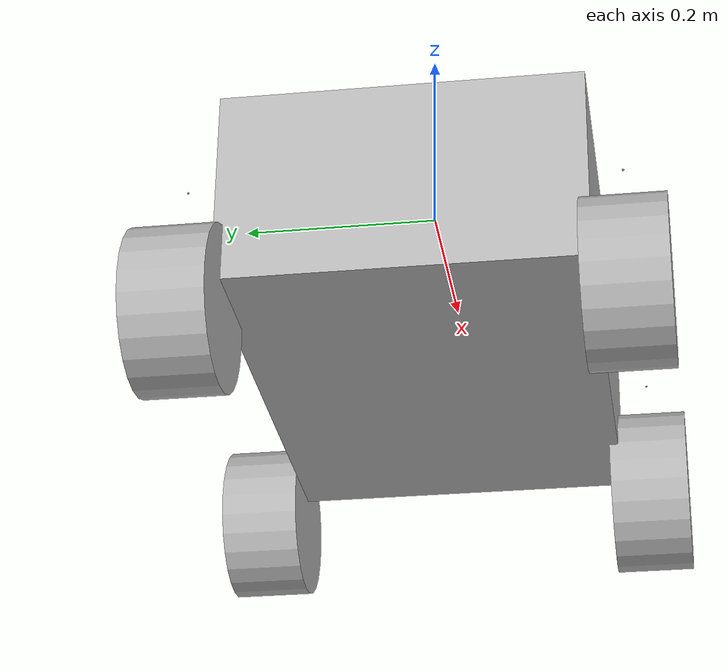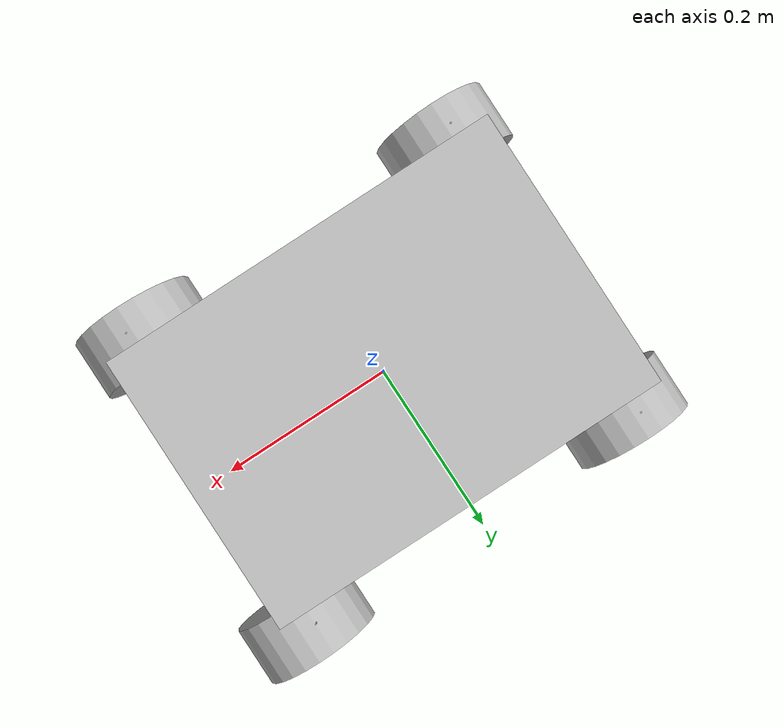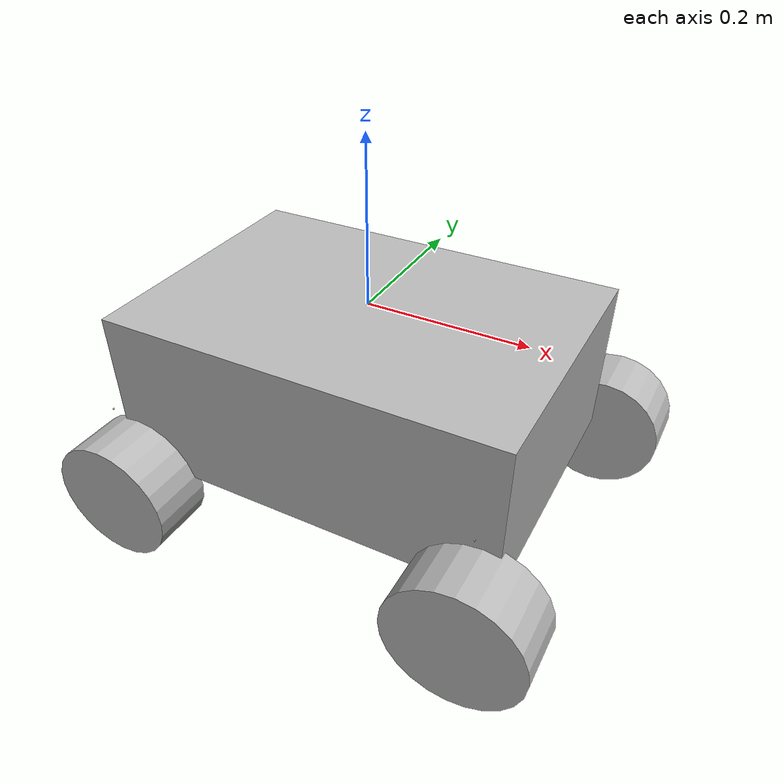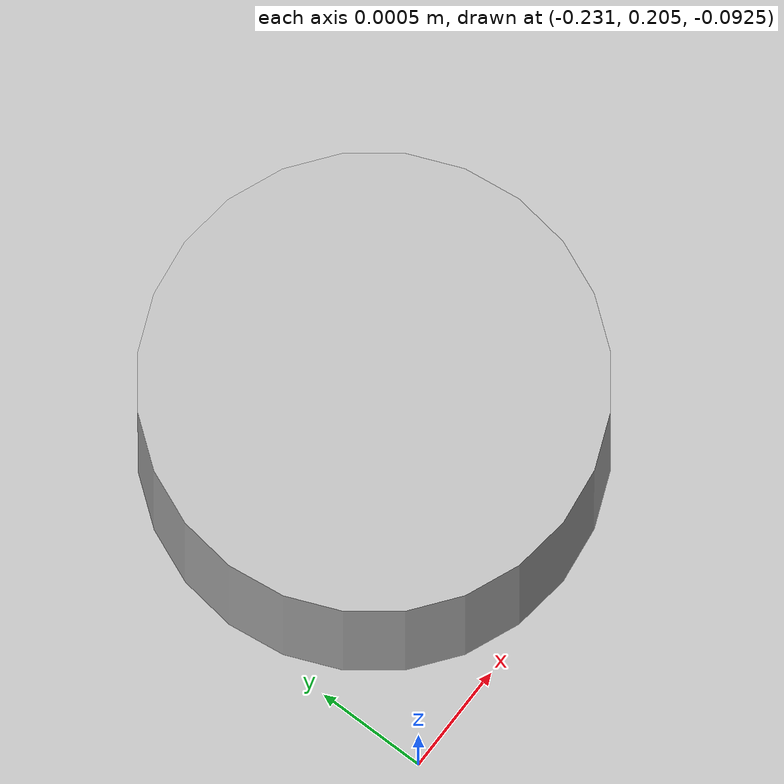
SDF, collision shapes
<sdf version='1.7'>
  <model name='ranger_mini_v2'>
    <link name='base_footprint'>
      <inertial>
        <pose>0 0 0 0 -0 0</pose>
        <mass>10</mass>
        <inertia>
          <ixx>1</ixx>
          <ixy>0</ixy>
          <ixz>0</ixz>
          <iyy>1</iyy>
          <iyz>0</iyz>
          <izz>1</izz>
        </inertia>
      </inertial>
      <collision name='base_footprint_fixed_joint_lump__base_link_collision'>
        <pose>0 0 -0.1 0 -0 0</pose>
        <geometry>
          <box>
            <size>0.5 0.35 0.2</size>
          </box>
        </geometry>
      </collision>
      <visual name='base_footprint_fixed_joint_lump__base_link_visual'>
        <pose>0 0 0 1.57 0 3.14</pose>
        <geometry>
          <mesh>
            <scale>1 1 1</scale>
            <uri>file://$(find ranger_mini_v2)/meshes/ranger_mini_v2/meshes/ranger_base.dae</uri>
          </mesh>
        </geometry>
      </visual>
    </link>
    <joint name='fl_steering_wheel' type='revolute'>
      <pose relative_to='base_footprint'>0.23 0.206 -0.1 0 -0 0</pose>
      <parent>base_footprint</parent>
      <child>fl_steering_wheel_link</child>
      <axis>
        <xyz>0 0 1</xyz>
        <limit>
          <lower>-2.1</lower>
          <upper>2.1</upper>
          <effort>5</effort>
          <velocity>6.28</velocity>
        </limit>
        <dynamics>
          <spring_reference>0</spring_reference>
          <spring_stiffness>0</spring_stiffness>
        </dynamics>
      </axis>
    </joint>
    <link name='fl_steering_wheel_link'>
      <pose relative_to='fl_steering_wheel'>0 0 0 0 -0 0</pose>
      <inertial>
        <pose>0 0 0 0 -0 0</pose>
        <mass>1</mass>
        <inertia>
          <ixx>0.01</ixx>
          <ixy>0</ixy>
          <ixz>0</ixz>
          <iyy>0.01</iyy>
          <iyz>0</iyz>
          <izz>0.01</izz>
        </inertia>
      </inertial>
      <collision name='fl_steering_wheel_link_collision'>
        <pose>0 0 0.008 0 -0 0</pose>
        <geometry>
          <cylinder>
            <length>0.001</length>
            <radius>0.001</radius>
          </cylinder>
        </geometry>
      </collision>
      <collision name='fl_steering_wheel_link_collision_1'>
        <pose>0 0 0 0 -0 0</pose>
        <geometry>
          <cylinder>
            <length>0.001</length>
            <radius>0.001</radius>
          </cylinder>
        </geometry>
      </collision>
      <visual name='fl_steering_wheel_link_visual'>
        <pose>-0.23 -0.194 0.1 1.57 0 3.14</pose>
        <geometry>
          <mesh>
            <scale>1 1 1</scale>
            <uri>file://$(find ranger_mini_v2)/meshes/ranger_mini_v2/meshes/fl.dae</uri>
          </mesh>
        </geometry>
      </visual>
    </link>
    <joint name='fl_wheel' type='revolute'>
      <pose relative_to='fl_steering_wheel_link'>0.03 0.01 -0.12 0 -0 0</pose>
      <parent>fl_steering_wheel_link</parent>
      <child>fl_wheel_link</child>
      <axis>
        <xyz>0 1 0</xyz>
        <limit>
          <lower>-1e+16</lower>
          <upper>1e+16</upper>
        </limit>
        <dynamics>
          <spring_reference>0</spring_reference>
          <spring_stiffness>0</spring_stiffness>
        </dynamics>
      </axis>
    </joint>
    <link name='fl_wheel_link'>
      <pose relative_to='fl_wheel'>0 0 0 0 -0 0</pose>
      <inertial>
        <pose>0 0 0 0 -0 0</pose>
        <mass>8</mass>
        <inertia>
          <ixx>0.1171</ixx>
          <ixy>0</ixy>
          <ixz>0</ixz>
          <iyy>0.1361</iyy>
          <iyz>0</iyz>
          <izz>0.1171</izz>
        </inertia>
      </inertial>
      <collision name='fl_wheel_link_collision'>
        <pose>0 0 0 1.57 -0 0</pose>
        <geometry>
          <cylinder>
            <length>0.08</length>
            <radius>0.08</radius>
          </cylinder>
        </geometry>
      </collision>
      <visual name='fl_wheel_link_visual'>
        <pose>0 0 0 1.57 -0 0</pose>
        <geometry>
          <cylinder>
            <length>0.01</length>
            <radius>0.01</radius>
          </cylinder>
        </geometry>
      </visual>
    </link>
    <joint name='fr_steering_wheel' type='revolute'>
      <pose relative_to='base_footprint'>0.23 -0.206 -0.1 0 -0 0</pose>
      <parent>base_footprint</parent>
      <child>fr_steering_wheel_link</child>
      <axis>
        <xyz>0 0 1</xyz>
        <limit>
          <lower>-2.1</lower>
          <upper>2.1</upper>
          <effort>5</effort>
          <velocity>6.28</velocity>
        </limit>
        <dynamics>
          <spring_reference>0</spring_reference>
          <spring_stiffness>0</spring_stiffness>
        </dynamics>
      </axis>
    </joint>
    <link name='fr_steering_wheel_link'>
      <pose relative_to='fr_steering_wheel'>0 0 0 0 -0 0</pose>
      <inertial>
        <pose>0 0 0 0 -0 0</pose>
        <mass>1</mass>
        <inertia>
          <ixx>0.01</ixx>
          <ixy>0</ixy>
          <ixz>0</ixz>
          <iyy>0.01</iyy>
          <iyz>0</iyz>
          <izz>0.01</izz>
        </inertia>
      </inertial>
      <collision name='fr_steering_wheel_link_collision'>
        <pose>0 0 0.008 0 -0 0</pose>
        <geometry>
          <cylinder>
            <length>0.001</length>
            <radius>0.001</radius>
          </cylinder>
        </geometry>
      </collision>
      <visual name='fr_steering_wheel_link_visual'>
        <pose>-0.23 0.194 0.1 1.57 0 3.14</pose>
        <geometry>
          <mesh>
            <scale>1 1 1</scale>
            <uri>file://$(find ranger_mini_v2)/meshes/ranger_mini_v2/meshes/fr.dae</uri>
          </mesh>
        </geometry>
      </visual>
    </link>
    <joint name='fr_wheel' type='revolute'>
      <pose relative_to='fr_steering_wheel_link'>0 0 -0.12 0 -0 0</pose>
      <parent>fr_steering_wheel_link</parent>
      <child>fr_wheel_link</child>
      <axis>
        <xyz>0 1 0</xyz>
        <limit>
          <lower>-1e+16</lower>
          <upper>1e+16</upper>
        </limit>
        <dynamics>
          <spring_reference>0</spring_reference>
          <spring_stiffness>0</spring_stiffness>
        </dynamics>
      </axis>
    </joint>
    <link name='fr_wheel_link'>
      <pose relative_to='fr_wheel'>0 0 0 0 -0 0</pose>
      <inertial>
        <pose>0 0 0 0 -0 0</pose>
        <mass>8</mass>
        <inertia>
          <ixx>0.1171</ixx>
          <ixy>0</ixy>
          <ixz>0</ixz>
          <iyy>0.1361</iyy>
          <iyz>0</iyz>
          <izz>0.1171</izz>
        </inertia>
      </inertial>
      <collision name='fr_wheel_link_collision'>
        <pose>0 0 0 1.57 -0 0</pose>
        <geometry>
          <cylinder>
            <length>0.08</length>
            <radius>0.085</radius>
          </cylinder>
        </geometry>
      </collision>
      <visual name='fr_wheel_link_visual'>
        <pose>0 0 0 1.57 -0 0</pose>
        <geometry>
          <cylinder>
            <length>0.01</length>
            <radius>0.01</radius>
          </cylinder>
        </geometry>
      </visual>
    </link>
    <joint name='rl_steering_wheel' type='revolute'>
      <pose relative_to='base_footprint'>-0.23 0.206 -0.1 0 -0 0</pose>
      <parent>base_footprint</parent>
      <child>rl_steering_wheel_link</child>
      <axis>
        <xyz>0 0 1</xyz>
        <limit>
          <lower>-2.1</lower>
          <upper>2.1</upper>
          <effort>5</effort>
          <velocity>6.28</velocity>
        </limit>
        <dynamics>
          <spring_reference>0</spring_reference>
          <spring_stiffness>0</spring_stiffness>
        </dynamics>
      </axis>
    </joint>
    <link name='rl_steering_wheel_link'>
      <pose relative_to='rl_steering_wheel'>0 0 0 0 -0 0</pose>
      <inertial>
        <pose>0 0 0 0 -0 0</pose>
        <mass>1</mass>
        <inertia>
          <ixx>0.01</ixx>
          <ixy>0</ixy>
          <ixz>0</ixz>
          <iyy>0.01</iyy>
          <iyz>0</iyz>
          <izz>0.01</izz>
        </inertia>
      </inertial>
      <collision name='rl_steering_wheel_link_collision'>
        <pose>0 0 0.008 0 -0 0</pose>
        <geometry>
          <cylinder>
            <length>0.001</length>
            <radius>0.001</radius>
          </cylinder>
        </geometry>
      </collision>
      <visual name='rl_steering_wheel_link_visual'>
        <pose>-0.23 -0.194 0.1 1.57 0 3.14</pose>
        <geometry>
          <mesh>
            <scale>1 1 1</scale>
            <uri>file://$(find ranger_mini_v2)/meshes/ranger_mini_v2/meshes/fl.dae</uri>
          </mesh>
        </geometry>
      </visual>
    </link>
    <joint name='rl_wheel' type='revolute'>
      <pose relative_to='rl_steering_wheel_link'>0 0 -0.12 0 -0 0</pose>
      <parent>rl_steering_wheel_link</parent>
      <child>rl_wheel_link</child>
      <axis>
        <xyz>0 1 0</xyz>
        <limit>
          <lower>-1e+16</lower>
          <upper>1e+16</upper>
        </limit>
        <dynamics>
          <spring_reference>0</spring_reference>
          <spring_stiffness>0</spring_stiffness>
        </dynamics>
      </axis>
    </joint>
    <link name='rl_wheel_link'>
      <pose relative_to='rl_wheel'>0 0 0 0 -0 0</pose>
      <inertial>
        <pose>0 0 0 0 -0 0</pose>
        <mass>8</mass>
        <inertia>
          <ixx>0.1171</ixx>
          <ixy>0</ixy>
          <ixz>0</ixz>
          <iyy>0.1361</iyy>
          <iyz>0</iyz>
          <izz>0.1171</izz>
        </inertia>
      </inertial>
      <collision name='rl_wheel_link_collision'>
        <pose>0 0 0 1.57 -0 0</pose>
        <geometry>
          <cylinder>
            <length>0.08</length>
            <radius>0.08</radius>
          </cylinder>
        </geometry>
      </collision>
      <visual name='rl_wheel_link_visual'>
        <pose>0 0 0 1.57 -0 0</pose>
        <geometry>
          <cylinder>
            <length>0.01</length>
            <radius>0.01</radius>
          </cylinder>
        </geometry>
      </visual>
    </link>
    <joint name='rr_steering_wheel' type='revolute'>
      <pose relative_to='base_footprint'>-0.23 -0.206 -0.1 0 -0 0</pose>
      <parent>base_footprint</parent>
      <child>rr_steering_wheel_link</child>
      <axis>
        <xyz>0 0 1</xyz>
        <limit>
          <lower>-2.1</lower>
          <upper>2.1</upper>
          <effort>5</effort>
          <velocity>6.28</velocity>
        </limit>
        <dynamics>
          <spring_reference>0</spring_reference>
          <spring_stiffness>0</spring_stiffness>
        </dynamics>
      </axis>
    </joint>
    <link name='rr_steering_wheel_link'>
      <pose relative_to='rr_steering_wheel'>0 0 0 0 -0 0</pose>
      <inertial>
        <pose>0 0 0 0 -0 0</pose>
        <mass>1</mass>
        <inertia>
          <ixx>0.01</ixx>
          <ixy>0</ixy>
          <ixz>0</ixz>
          <iyy>0.01</iyy>
          <iyz>0</iyz>
          <izz>0.01</izz>
        </inertia>
      </inertial>
      <collision name='rr_steering_wheel_link_collision'>
        <pose>0 0 0 0 -0 0</pose>
        <geometry>
          <cylinder>
            <length>0.001</length>
            <radius>0.001</radius>
          </cylinder>
        </geometry>
      </collision>
      <visual name='rr_steering_wheel_link_visual'>
        <pose>-0.23 0.194 0.1 1.57 0 3.14</pose>
        <geometry>
          <mesh>
            <scale>1 1 1</scale>
            <uri>file://$(find ranger_mini_v2)/meshes/ranger_mini_v2/meshes/fr.dae</uri>
          </mesh>
        </geometry>
      </visual>
    </link>
    <joint name='rr_wheel' type='revolute'>
      <pose relative_to='rr_steering_wheel_link'>0 0 -0.12 0 -0 0</pose>
      <parent>rr_steering_wheel_link</parent>
      <child>rr_wheel_link</child>
      <axis>
        <xyz>0 1 0</xyz>
        <limit>
          <lower>-1e+16</lower>
          <upper>1e+16</upper>
        </limit>
        <dynamics>
          <spring_reference>0</spring_reference>
          <spring_stiffness>0</spring_stiffness>
        </dynamics>
      </axis>
    </joint>
    <link name='rr_wheel_link'>
      <pose relative_to='rr_wheel'>0 0 0 0 -0 0</pose>
      <inertial>
        <pose>0 0 0 0 -0 0</pose>
        <mass>8</mass>
        <inertia>
          <ixx>0.1171</ixx>
          <ixy>0</ixy>
          <ixz>0</ixz>
          <iyy>0.1361</iyy>
          <iyz>0</iyz>
          <izz>0.1171</izz>
        </inertia>
      </inertial>
      <collision name='rr_wheel_link_collision'>
        <pose>0 0 0 1.57 -0 0</pose>
        <geometry>
          <cylinder>
            <length>0.08</length>
            <radius>0.08</radius>
          </cylinder>
        </geometry>
      </collision>
      <visual name='rr_wheel_link_visual'>
        <pose>0 0 0 1.57 -0 0</pose>
        <geometry>
          <cylinder>
            <length>0.01</length>
            <radius>0.01</radius>
          </cylinder>
        </geometry>
      </visual>
    </link>

    <static>0</static>

    <plugin name="ranger_mini_joint_state" filename="libgazebo_ros_joint_state_publisher.so">
      <ros>
          <remapping>~/out:=joint_states</remapping>
      </ros>
      <update_rate>30</update_rate>
      <joint_name>fl_wheel</joint_name>
      <joint_name>fr_wheel</joint_name>
      <joint_name>rl_wheel</joint_name>
      <joint_name>rr_wheel</joint_name>
      <joint_name>fl_steering_wheel</joint_name>
      <joint_name>fr_steering_wheel</joint_name>
      <joint_name>rl_steering_wheel</joint_name>
      <joint_name>rr_steering_wheel</joint_name>
    </plugin>

    <ros2_control name="GazeboSystem" type="system">
        <hardware>
            <plugin>gazebo_ros2_control/GazeboSystem</plugin>
        </hardware>

        <joint name="fl_wheel">
            <param name="node_id">1</param>
            <command_interface name="velocity">
            <param name="min">-3.14</param>
            <param name="max">3.14</param>
            </command_interface>
            <state_interface name="velocity"/>
            <state_interface name="effort"/>
        </joint>

        <joint name="fr_wheel">
            <param name="node_id">4</param>
            <command_interface name="velocity">
            <param name="min">-3.14</param>
            <param name="max">3.14</param>
            </command_interface>
            <state_interface name="velocity"/>
            <state_interface name="effort"/>
        </joint>

        <joint name="rl_wheel">
            <param name="node_id">2</param>
            <command_interface name="velocity">
            <param name="min">-3.14</param>
            <param name="max">3.14</param>
            </command_interface>
            <state_interface name="velocity"/>
            <state_interface name="effort"/>
        </joint>

        <joint name="rr_wheel">
            <param name="node_id">3</param>
            <command_interface name="velocity">
            <param name="min">-3.14</param>
            <param name="max">3.14</param>
            </command_interface>
            <state_interface name="velocity"/>
            <state_interface name="effort"/>
        </joint>

        <joint name="fl_steering_wheel">
            <param name="node_id">5</param>
            <command_interface name="position">
            <param name="min">-3.14</param>
            <param name="max">3.14</param>
            </command_interface>
            <state_interface name="position">
            <param name="initial_value">0</param>
            </state_interface>
            <state_interface name="velocity"/>
            <state_interface name="effort"/>
        </joint>

        <joint name="fr_steering_wheel">
            <param name="node_id">8</param>
            <command_interface name="position">
            <param name="min">-3.14</param>
            <param name="max">3.14</param>
            </command_interface>
            <state_interface name="position">
            <param name="initial_value">0</param>
            </state_interface>
            <state_interface name="velocity"/>
            <state_interface name="effort"/>
        </joint>

        <joint name="rl_steering_wheel">
            <param name="node_id">6</param>
            <command_interface name="position">
            <param name="min">-3.14</param>
            <param name="max">3.14</param>
            </command_interface>
            <state_interface name="position">
            <param name="initial_value">0</param>
            </state_interface>
            <state_interface name="velocity"/>
            <state_interface name="effort"/>
        </joint>

        <joint name="rr_steering_wheel">
            <param name="node_id">7</param>
            <command_interface name="position">
            <param name="min">-3.14</param>
            <param name="max">3.14</param>
            </command_interface>
            <state_interface name="position">
            <param name="initial_value">0</param>
            </state_interface>
            <state_interface name="velocity"/>
            <state_interface name="effort"/>
        </joint>
    </ros2_control>

    <plugin name="gazebo_ros2_control" filename="libgazebo_ros2_control.so">
      <parameters>$(find ranger_mini_v2)/config/controllers.yaml</parameters>
    </plugin>

  </model>
</sdf>
